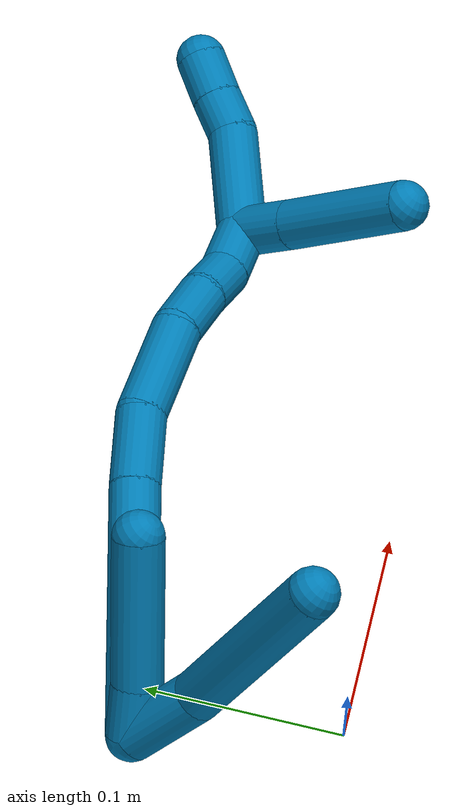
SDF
<sdf version="1.7">
 <world name="default">
  <model name="9">
   <static>0</static>
   <link name="9">
    <collision name="collision-cylinder-e_1_2_8">
     <pose>-0.000443 -0.003912 0.020993 0.184245 -0.020762 -0.001918</pose>
     <geometry><cylinder><radius>0.0125</radius><length>0.042718</length></cylinder></geometry>
     <surface>
      <friction><ode><mu>1.16</mu><mu2>1.16</mu2><slip1>0</slip1><slip2>0</slip2></ode></friction>
      <contact><ode><kp>1e+06</kp><kd>1</kd><max_vel>0</max_vel><min_depth>0.001</min_depth></ode></contact>
     </surface>
    </collision>
    <visual name="visual-cylinder-e_1_2_8">
     <pose>-0.000443 -0.003912 0.020993 0.184245 -0.020762 -0.001918</pose>
     <geometry><cylinder><radius>0.0125</radius><length>0.042718</length></cylinder></geometry>
     <material><ambient>0 0.490196 0.709804 1</ambient></material>
    </visual>
    <collision name="collision-cylinder-e_2_8_6">
     <pose>-0.014895 -0.007392 0.093764 -0.00835 -0.264212 0.00111</pose>
     <geometry><cylinder><radius>0.0125</radius><length>0.107282</length></cylinder></geometry>
     <surface>
      <friction><ode><mu>1.16</mu><mu2>1.16</mu2><slip1>0</slip1><slip2>0</slip2></ode></friction>
      <contact><ode><kp>1e+06</kp><kd>1</kd><max_vel>0</max_vel><min_depth>0.001</min_depth></ode></contact>
     </surface>
    </collision>
    <visual name="visual-cylinder-e_2_8_6">
     <pose>-0.014895 -0.007392 0.093764 -0.00835 -0.264212 0.00111</pose>
     <geometry><cylinder><radius>0.0125</radius><length>0.107282</length></cylinder></geometry>
     <material><ambient>0 0.490196 0.709804 1</ambient></material>
    </visual>
    <collision name="collision-cylinder-e_1_2_9">
     <pose>0.002361 0.007471 0.010641 -0.612107 0.179624 -0.056896</pose>
     <geometry><cylinder><radius>0.0125</radius><length>0.026429</length></cylinder></geometry>
     <surface>
      <friction><ode><mu>1.16</mu><mu2>1.16</mu2><slip1>0</slip1><slip2>0</slip2></ode></friction>
      <contact><ode><kp>1e+06</kp><kd>1</kd><max_vel>0</max_vel><min_depth>0.001</min_depth></ode></contact>
     </surface>
    </collision>
    <visual name="visual-cylinder-e_1_2_9">
     <pose>0.002361 0.007471 0.010641 -0.612107 0.179624 -0.056896</pose>
     <geometry><cylinder><radius>0.0125</radius><length>0.026429</length></cylinder></geometry>
     <material><ambient>0 0.490196 0.709804 1</ambient></material>
    </visual>
    <collision name="collision-cylinder-e_2_9_5">
     <pose>0.009465 0.038094 0.049472 -0.687618 0.129313 -0.046354</pose>
     <geometry><cylinder><radius>0.0125</radius><length>0.073571</length></cylinder></geometry>
     <surface>
      <friction><ode><mu>1.16</mu><mu2>1.16</mu2><slip1>0</slip1><slip2>0</slip2></ode></friction>
      <contact><ode><kp>1e+06</kp><kd>1</kd><max_vel>0</max_vel><min_depth>0.001</min_depth></ode></contact>
     </surface>
    </collision>
    <visual name="visual-cylinder-e_2_9_5">
     <pose>0.009465 0.038094 0.049472 -0.687618 0.129313 -0.046354</pose>
     <geometry><cylinder><radius>0.0125</radius><length>0.073571</length></cylinder></geometry>
     <material><ambient>0 0.490196 0.709804 1</ambient></material>
    </visual>
    <collision name="collision-cylinder-e_1_2_10">
     <pose>0.049104 0.03454 0.01984 -1.04942 0.889271 -0.538198</pose>
     <geometry><cylinder><radius>0.0125</radius><length>0.126457</length></cylinder></geometry>
     <surface>
      <friction><ode><mu>1.16</mu><mu2>1.16</mu2><slip1>0</slip1><slip2>0</slip2></ode></friction>
      <contact><ode><kp>1e+06</kp><kd>1</kd><max_vel>0</max_vel><min_depth>0.001</min_depth></ode></contact>
     </surface>
    </collision>
    <visual name="visual-cylinder-e_1_2_10">
     <pose>0.049104 0.03454 0.01984 -1.04942 0.889271 -0.538198</pose>
     <geometry><cylinder><radius>0.0125</radius><length>0.126457</length></cylinder></geometry>
     <material><ambient>0 0.490196 0.709804 1</ambient></material>
    </visual>
    <collision name="collision-cylinder-e_2_10_11">
     <pose>0.113804 0.078623 0.046291 -0.964858 0.930915 -0.514421</pose>
     <geometry><cylinder><radius>0.0125</radius><length>0.038885</length></cylinder></geometry>
     <surface>
      <friction><ode><mu>1.16</mu><mu2>1.16</mu2><slip1>0</slip1><slip2>0</slip2></ode></friction>
      <contact><ode><kp>1e+06</kp><kd>1</kd><max_vel>0</max_vel><min_depth>0.001</min_depth></ode></contact>
     </surface>
    </collision>
    <visual name="visual-cylinder-e_2_10_11">
     <pose>0.113804 0.078623 0.046291 -0.964858 0.930915 -0.514421</pose>
     <geometry><cylinder><radius>0.0125</radius><length>0.038885</length></cylinder></geometry>
     <material><ambient>0 0.490196 0.709804 1</ambient></material>
    </visual>
    <collision name="collision-cylinder-e_3_11_12">
     <pose>0.152178 0.094032 0.06298 -0.527209 1.09764 -0.327113</pose>
     <geometry><cylinder><radius>0.0125</radius><length>0.051178</length></cylinder></geometry>
     <surface>
      <friction><ode><mu>1.16</mu><mu2>1.16</mu2><slip1>0</slip1><slip2>0</slip2></ode></friction>
      <contact><ode><kp>1e+06</kp><kd>1</kd><max_vel>0</max_vel><min_depth>0.001</min_depth></ode></contact>
     </surface>
    </collision>
    <visual name="visual-cylinder-e_3_11_12">
     <pose>0.152178 0.094032 0.06298 -0.527209 1.09764 -0.327113</pose>
     <geometry><cylinder><radius>0.0125</radius><length>0.051178</length></cylinder></geometry>
     <material><ambient>0 0.490196 0.709804 1</ambient></material>
    </visual>
    <collision name="collision-cylinder-e_4_12_13">
     <pose>0.188862 0.099816 0.076471 0.024142 1.33004 0.018932</pose>
     <geometry><cylinder><radius>0.0125</radius><length>0.028639</length></cylinder></geometry>
     <surface>
      <friction><ode><mu>1.16</mu><mu2>1.16</mu2><slip1>0</slip1><slip2>0</slip2></ode></friction>
      <contact><ode><kp>1e+06</kp><kd>1</kd><max_vel>0</max_vel><min_depth>0.001</min_depth></ode></contact>
     </surface>
    </collision>
    <visual name="visual-cylinder-e_4_12_13">
     <pose>0.188862 0.099816 0.076471 0.024142 1.33004 0.018932</pose>
     <geometry><cylinder><radius>0.0125</radius><length>0.028639</length></cylinder></geometry>
     <material><ambient>0 0.490196 0.709804 1</ambient></material>
    </visual>
    <collision name="collision-cylinder-e_5_13_14">
     <pose>0.215182 0.098602 0.081204 0.708575 1.43161 0.622468</pose>
     <geometry><cylinder><radius>0.0125</radius><length>0.025071</length></cylinder></geometry>
     <surface>
      <friction><ode><mu>1.16</mu><mu2>1.16</mu2><slip1>0</slip1><slip2>0</slip2></ode></friction>
      <contact><ode><kp>1e+06</kp><kd>1</kd><max_vel>0</max_vel><min_depth>0.001</min_depth></ode></contact>
     </surface>
    </collision>
    <visual name="visual-cylinder-e_5_13_14">
     <pose>0.215182 0.098602 0.081204 0.708575 1.43161 0.622468</pose>
     <geometry><cylinder><radius>0.0125</radius><length>0.025071</length></cylinder></geometry>
     <material><ambient>0 0.490196 0.709804 1</ambient></material>
    </visual>
    <collision name="collision-cylinder-e_6_14_1">
     <pose>0.241763 0.100109 0.086257 -0.615395 1.25871 -0.454781</pose>
     <geometry><cylinder><radius>0.0125</radius><length>0.029771</length></cylinder></geometry>
     <surface>
      <friction><ode><mu>1.16</mu><mu2>1.16</mu2><slip1>0</slip1><slip2>0</slip2></ode></friction>
      <contact><ode><kp>1e+06</kp><kd>1</kd><max_vel>0</max_vel><min_depth>0.001</min_depth></ode></contact>
     </surface>
    </collision>
    <visual name="visual-cylinder-e_6_14_1">
     <pose>0.241763 0.100109 0.086257 -0.615395 1.25871 -0.454781</pose>
     <geometry><cylinder><radius>0.0125</radius><length>0.029771</length></cylinder></geometry>
     <material><ambient>0 0.490196 0.709804 1</ambient></material>
    </visual>
    <collision name="collision-cylinder-e_1_1_15">
     <pose>0.277299 0.119525 0.096895 -1.1803 0.866876 -0.601145</pose>
     <geometry><cylinder><radius>0.0125</radius><length>0.056067</length></cylinder></geometry>
     <surface>
      <friction><ode><mu>1.16</mu><mu2>1.16</mu2><slip1>0</slip1><slip2>0</slip2></ode></friction>
      <contact><ode><kp>1e+06</kp><kd>1</kd><max_vel>0</max_vel><min_depth>0.001</min_depth></ode></contact>
     </surface>
    </collision>
    <visual name="visual-cylinder-e_1_1_15">
     <pose>0.277299 0.119525 0.096895 -1.1803 0.866876 -0.601145</pose>
     <geometry><cylinder><radius>0.0125</radius><length>0.056067</length></cylinder></geometry>
     <material><ambient>0 0.490196 0.709804 1</ambient></material>
    </visual>
    <collision name="collision-cylinder-e_2_15_16">
     <pose>0.304402 0.144943 0.105161 -1.41469 0.580134 -0.499701</pose>
     <geometry><cylinder><radius>0.0125</radius><length>0.020916</length></cylinder></geometry>
     <surface>
      <friction><ode><mu>1.16</mu><mu2>1.16</mu2><slip1>0</slip1><slip2>0</slip2></ode></friction>
      <contact><ode><kp>1e+06</kp><kd>1</kd><max_vel>0</max_vel><min_depth>0.001</min_depth></ode></contact>
     </surface>
    </collision>
    <visual name="visual-cylinder-e_2_15_16">
     <pose>0.304402 0.144943 0.105161 -1.41469 0.580134 -0.499701</pose>
     <geometry><cylinder><radius>0.0125</radius><length>0.020916</length></cylinder></geometry>
     <material><ambient>0 0.490196 0.709804 1</ambient></material>
    </visual>
    <collision name="collision-cylinder-e_3_16_4">
     <pose>0.316642 0.162893 0.10838 -1.37373 0.600941 -0.497676</pose>
     <geometry><cylinder><radius>0.0125</radius><length>0.023017</length></cylinder></geometry>
     <surface>
      <friction><ode><mu>1.16</mu><mu2>1.16</mu2><slip1>0</slip1><slip2>0</slip2></ode></friction>
      <contact><ode><kp>1e+06</kp><kd>1</kd><max_vel>0</max_vel><min_depth>0.001</min_depth></ode></contact>
     </surface>
    </collision>
    <visual name="visual-cylinder-e_3_16_4">
     <pose>0.316642 0.162893 0.10838 -1.37373 0.600941 -0.497676</pose>
     <geometry><cylinder><radius>0.0125</radius><length>0.023017</length></cylinder></geometry>
     <material><ambient>0 0.490196 0.709804 1</ambient></material>
    </visual>
    <collision name="collision-cylinder-e_1_1_17">
     <pose>0.252332 0.095361 0.10307 0.51405 -0.235036 -0.062042</pose>
     <geometry><cylinder><radius>0.0125</radius><length>0.030894</length></cylinder></geometry>
     <surface>
      <friction><ode><mu>1.16</mu><mu2>1.16</mu2><slip1>0</slip1><slip2>0</slip2></ode></friction>
      <contact><ode><kp>1e+06</kp><kd>1</kd><max_vel>0</max_vel><min_depth>0.001</min_depth></ode></contact>
     </surface>
    </collision>
    <visual name="visual-cylinder-e_1_1_17">
     <pose>0.252332 0.095361 0.10307 0.51405 -0.235036 -0.062042</pose>
     <geometry><cylinder><radius>0.0125</radius><length>0.030894</length></cylinder></geometry>
     <material><ambient>0 0.490196 0.709804 1</ambient></material>
    </visual>
    <collision name="collision-cylinder-e_2_17_3">
     <pose>0.240599 0.072158 0.145774 0.490409 -0.237703 -0.059747</pose>
     <geometry><cylinder><radius>0.0125</radius><length>0.069106</length></cylinder></geometry>
     <surface>
      <friction><ode><mu>1.16</mu><mu2>1.16</mu2><slip1>0</slip1><slip2>0</slip2></ode></friction>
      <contact><ode><kp>1e+06</kp><kd>1</kd><max_vel>0</max_vel><min_depth>0.001</min_depth></ode></contact>
     </surface>
    </collision>
    <visual name="visual-cylinder-e_2_17_3">
     <pose>0.240599 0.072158 0.145774 0.490409 -0.237703 -0.059747</pose>
     <geometry><cylinder><radius>0.0125</radius><length>0.069106</length></cylinder></geometry>
     <material><ambient>0 0.490196 0.709804 1</ambient></material>
    </visual>
    <collision name="collision-sphere-3">
     <pose>0.232462 0.056341 0.175398 0 -0 0</pose>
     <geometry><sphere><radius>0.0125</radius></sphere></geometry>
     <surface>
      <friction><ode><mu>1.16</mu><mu2>1.16</mu2><slip1>0</slip1><slip2>0</slip2></ode></friction>
      <contact><ode><kp>1e+06</kp><kd>1</kd><max_vel>0</max_vel><min_depth>0.001</min_depth></ode></contact>
     </surface>
    </collision>
    <visual name="visual-sphere-3">
     <pose>0.232462 0.056341 0.175398 0 -0 0</pose>
     <geometry><sphere><radius>0.0125</radius></sphere></geometry>
     <material><ambient>0 0.490196 0.709804 1</ambient></material>
    </visual>
    <collision name="collision-sphere-17">
     <pose>0.248735 0.087974 0.116151 0 -0 0</pose>
     <geometry><sphere><radius>0.0125</radius></sphere></geometry>
     <surface>
      <friction><ode><mu>1.16</mu><mu2>1.16</mu2><slip1>0</slip1><slip2>0</slip2></ode></friction>
      <contact><ode><kp>1e+06</kp><kd>1</kd><max_vel>0</max_vel><min_depth>0.001</min_depth></ode></contact>
     </surface>
    </collision>
    <visual name="visual-sphere-17">
     <pose>0.248735 0.087974 0.116151 0 -0 0</pose>
     <geometry><sphere><radius>0.0125</radius></sphere></geometry>
     <material><ambient>0 0.490196 0.709804 1</ambient></material>
    </visual>
    <collision name="collision-sphere-4">
     <pose>0.323149 0.172201 0.110238 0 -0 0</pose>
     <geometry><sphere><radius>0.0125</radius></sphere></geometry>
     <surface>
      <friction><ode><mu>1.16</mu><mu2>1.16</mu2><slip1>0</slip1><slip2>0</slip2></ode></friction>
      <contact><ode><kp>1e+06</kp><kd>1</kd><max_vel>0</max_vel><min_depth>0.001</min_depth></ode></contact>
     </surface>
    </collision>
    <visual name="visual-sphere-4">
     <pose>0.323149 0.172201 0.110238 0 -0 0</pose>
     <geometry><sphere><radius>0.0125</radius></sphere></geometry>
     <material><ambient>0 0.490196 0.709804 1</ambient></material>
    </visual>
    <collision name="collision-sphere-16">
     <pose>0.310135 0.153584 0.106521 0 -0 0</pose>
     <geometry><sphere><radius>0.0125</radius></sphere></geometry>
     <surface>
      <friction><ode><mu>1.16</mu><mu2>1.16</mu2><slip1>0</slip1><slip2>0</slip2></ode></friction>
      <contact><ode><kp>1e+06</kp><kd>1</kd><max_vel>0</max_vel><min_depth>0.001</min_depth></ode></contact>
     </surface>
    </collision>
    <visual name="visual-sphere-16">
     <pose>0.310135 0.153584 0.106521 0 -0 0</pose>
     <geometry><sphere><radius>0.0125</radius></sphere></geometry>
     <material><ambient>0 0.490196 0.709804 1</ambient></material>
    </visual>
    <collision name="collision-sphere-15">
     <pose>0.298669 0.136302 0.103801 0 -0 0</pose>
     <geometry><sphere><radius>0.0125</radius></sphere></geometry>
     <surface>
      <friction><ode><mu>1.16</mu><mu2>1.16</mu2><slip1>0</slip1><slip2>0</slip2></ode></friction>
      <contact><ode><kp>1e+06</kp><kd>1</kd><max_vel>0</max_vel><min_depth>0.001</min_depth></ode></contact>
     </surface>
    </collision>
    <visual name="visual-sphere-15">
     <pose>0.298669 0.136302 0.103801 0 -0 0</pose>
     <geometry><sphere><radius>0.0125</radius></sphere></geometry>
     <material><ambient>0 0.490196 0.709804 1</ambient></material>
    </visual>
    <collision name="collision-sphere-1">
     <pose>0.255929 0.102747 0.089989 0 -0 0</pose>
     <geometry><sphere><radius>0.0125</radius></sphere></geometry>
     <surface>
      <friction><ode><mu>1.16</mu><mu2>1.16</mu2><slip1>0</slip1><slip2>0</slip2></ode></friction>
      <contact><ode><kp>1e+06</kp><kd>1</kd><max_vel>0</max_vel><min_depth>0.001</min_depth></ode></contact>
     </surface>
    </collision>
    <visual name="visual-sphere-1">
     <pose>0.255929 0.102747 0.089989 0 -0 0</pose>
     <geometry><sphere><radius>0.0125</radius></sphere></geometry>
     <material><ambient>0 0.490196 0.709804 1</ambient></material>
    </visual>
    <collision name="collision-sphere-14">
     <pose>0.227596 0.09747 0.082525 0 -0 0</pose>
     <geometry><sphere><radius>0.0125</radius></sphere></geometry>
     <surface>
      <friction><ode><mu>1.16</mu><mu2>1.16</mu2><slip1>0</slip1><slip2>0</slip2></ode></friction>
      <contact><ode><kp>1e+06</kp><kd>1</kd><max_vel>0</max_vel><min_depth>0.001</min_depth></ode></contact>
     </surface>
    </collision>
    <visual name="visual-sphere-14">
     <pose>0.227596 0.09747 0.082525 0 -0 0</pose>
     <geometry><sphere><radius>0.0125</radius></sphere></geometry>
     <material><ambient>0 0.490196 0.709804 1</ambient></material>
    </visual>
    <collision name="collision-sphere-13">
     <pose>0.202768 0.099734 0.079884 0 -0 0</pose>
     <geometry><sphere><radius>0.0125</radius></sphere></geometry>
     <surface>
      <friction><ode><mu>1.16</mu><mu2>1.16</mu2><slip1>0</slip1><slip2>0</slip2></ode></friction>
      <contact><ode><kp>1e+06</kp><kd>1</kd><max_vel>0</max_vel><min_depth>0.001</min_depth></ode></contact>
     </surface>
    </collision>
    <visual name="visual-sphere-13">
     <pose>0.202768 0.099734 0.079884 0 -0 0</pose>
     <geometry><sphere><radius>0.0125</radius></sphere></geometry>
     <material><ambient>0 0.490196 0.709804 1</ambient></material>
    </visual>
    <collision name="collision-sphere-12">
     <pose>0.174955 0.099899 0.073057 0 -0 0</pose>
     <geometry><sphere><radius>0.0125</radius></sphere></geometry>
     <surface>
      <friction><ode><mu>1.16</mu><mu2>1.16</mu2><slip1>0</slip1><slip2>0</slip2></ode></friction>
      <contact><ode><kp>1e+06</kp><kd>1</kd><max_vel>0</max_vel><min_depth>0.001</min_depth></ode></contact>
     </surface>
    </collision>
    <visual name="visual-sphere-12">
     <pose>0.174955 0.099899 0.073057 0 -0 0</pose>
     <geometry><sphere><radius>0.0125</radius></sphere></geometry>
     <material><ambient>0 0.490196 0.709804 1</ambient></material>
    </visual>
    <collision name="collision-sphere-11">
     <pose>0.1294 0.088165 0.052903 0 -0 0</pose>
     <geometry><sphere><radius>0.0125</radius></sphere></geometry>
     <surface>
      <friction><ode><mu>1.16</mu><mu2>1.16</mu2><slip1>0</slip1><slip2>0</slip2></ode></friction>
      <contact><ode><kp>1e+06</kp><kd>1</kd><max_vel>0</max_vel><min_depth>0.001</min_depth></ode></contact>
     </surface>
    </collision>
    <visual name="visual-sphere-11">
     <pose>0.1294 0.088165 0.052903 0 -0 0</pose>
     <geometry><sphere><radius>0.0125</radius></sphere></geometry>
     <material><ambient>0 0.490196 0.709804 1</ambient></material>
    </visual>
    <collision name="collision-sphere-8">
     <pose>-0.000887 -0.007824 0.041986 0 -0 0</pose>
     <geometry><sphere><radius>0.0125</radius></sphere></geometry>
     <surface>
      <friction><ode><mu>1.16</mu><mu2>1.16</mu2><slip1>0</slip1><slip2>0</slip2></ode></friction>
      <contact><ode><kp>1e+06</kp><kd>1</kd><max_vel>0</max_vel><min_depth>0.001</min_depth></ode></contact>
     </surface>
    </collision>
    <visual name="visual-sphere-8">
     <pose>-0.000887 -0.007824 0.041986 0 -0 0</pose>
     <geometry><sphere><radius>0.0125</radius></sphere></geometry>
     <material><ambient>0 0.490196 0.709804 1</ambient></material>
    </visual>
    <collision name="collision-sphere-2">
     <geometry><sphere><radius>0.0125</radius></sphere></geometry>
     <surface>
      <friction><ode><mu>1.16</mu><mu2>1.16</mu2><slip1>0</slip1><slip2>0</slip2></ode></friction>
      <contact><ode><kp>1e+06</kp><kd>1</kd><max_vel>0</max_vel><min_depth>0.001</min_depth></ode></contact>
     </surface>
    </collision>
    <visual name="visual-sphere-2">
     <geometry><sphere><radius>0.0125</radius></sphere></geometry>
     <material><ambient>0 0.490196 0.709804 1</ambient></material>
    </visual>
    <collision name="collision-sphere-9">
     <pose>0.004722 0.014942 0.021283 0 -0 0</pose>
     <geometry><sphere><radius>0.0125</radius></sphere></geometry>
     <surface>
      <friction><ode><mu>1.16</mu><mu2>1.16</mu2><slip1>0</slip1><slip2>0</slip2></ode></friction>
      <contact><ode><kp>1e+06</kp><kd>1</kd><max_vel>0</max_vel><min_depth>0.001</min_depth></ode></contact>
     </surface>
    </collision>
    <visual name="visual-sphere-9">
     <pose>0.004722 0.014942 0.021283 0 -0 0</pose>
     <geometry><sphere><radius>0.0125</radius></sphere></geometry>
     <material><ambient>0 0.490196 0.709804 1</ambient></material>
    </visual>
    <collision name="collision-sphere-6">
     <pose>-0.028903 -0.00696 0.145541 0 -0 0</pose>
     <geometry><sphere><radius>0.0125</radius></sphere></geometry>
     <surface>
      <friction><ode><mu>1.16</mu><mu2>1.16</mu2><slip1>0</slip1><slip2>0</slip2></ode></friction>
      <contact><ode><kp>1e+06</kp><kd>1</kd><max_vel>0</max_vel><min_depth>0.001</min_depth></ode></contact>
     </surface>
    </collision>
    <visual name="visual-sphere-6">
     <pose>-0.028903 -0.00696 0.145541 0 -0 0</pose>
     <geometry><sphere><radius>0.0125</radius></sphere></geometry>
     <material><ambient>0 0.490196 0.709804 1</ambient></material>
    </visual>
    <collision name="collision-sphere-5">
     <pose>0.014209 0.061247 0.077661 0 -0 0</pose>
     <geometry><sphere><radius>0.0125</radius></sphere></geometry>
     <surface>
      <friction><ode><mu>1.16</mu><mu2>1.16</mu2><slip1>0</slip1><slip2>0</slip2></ode></friction>
      <contact><ode><kp>1e+06</kp><kd>1</kd><max_vel>0</max_vel><min_depth>0.001</min_depth></ode></contact>
     </surface>
    </collision>
    <visual name="visual-sphere-5">
     <pose>0.014209 0.061247 0.077661 0 -0 0</pose>
     <geometry><sphere><radius>0.0125</radius></sphere></geometry>
     <material><ambient>0 0.490196 0.709804 1</ambient></material>
    </visual>
    <collision name="collision-sphere-10">
     <pose>0.098208 0.06908 0.039679 0 -0 0</pose>
     <geometry><sphere><radius>0.0125</radius></sphere></geometry>
     <surface>
      <friction><ode><mu>1.16</mu><mu2>1.16</mu2><slip1>0</slip1><slip2>0</slip2></ode></friction>
      <contact><ode><kp>1e+06</kp><kd>1</kd><max_vel>0</max_vel><min_depth>0.001</min_depth></ode></contact>
     </surface>
    </collision>
    <visual name="visual-sphere-10">
     <pose>0.098208 0.06908 0.039679 0 -0 0</pose>
     <geometry><sphere><radius>0.0125</radius></sphere></geometry>
     <material><ambient>0 0.490196 0.709804 1</ambient></material>
    </visual>
    <inertial>
     <pose>0.118921 0.058671 0.070117 0 -0 0</pose>
     <mass>0.75</mass>
     <inertia>
      <ixx>0.00025</ixx>
      <ixy>0</ixy>
      <ixz>0</ixz>
      <iyy>0.000292</iyy>
      <iyz>0</iyz>
      <izz>-0.000233</izz>
     </inertia>
    </inertial>
   </link>
   <pose>-0.044621 0.092712 0.117786 0.362791 0.767122 -0.18517</pose>
  </model>
 </world>
</sdf>
